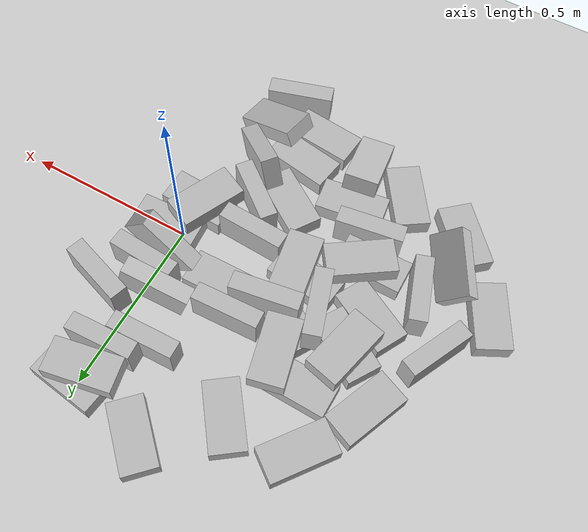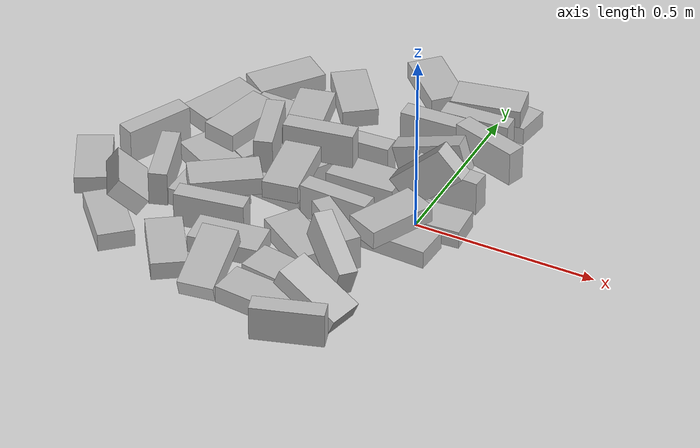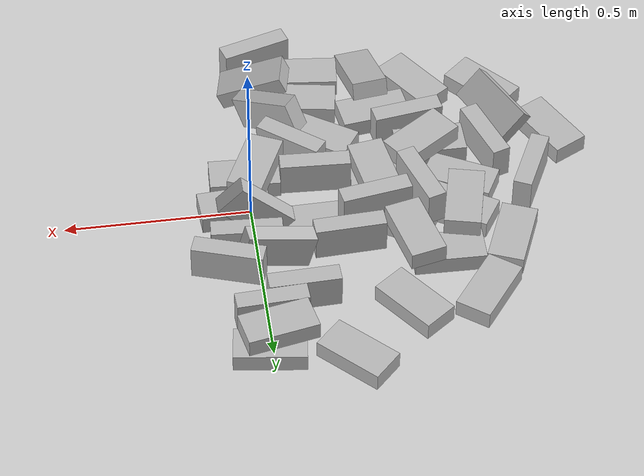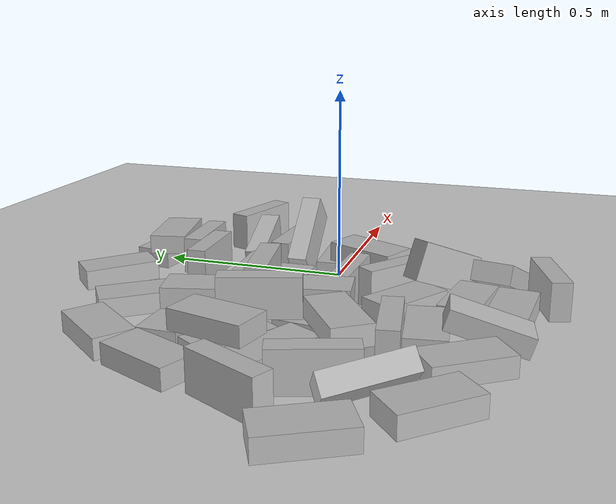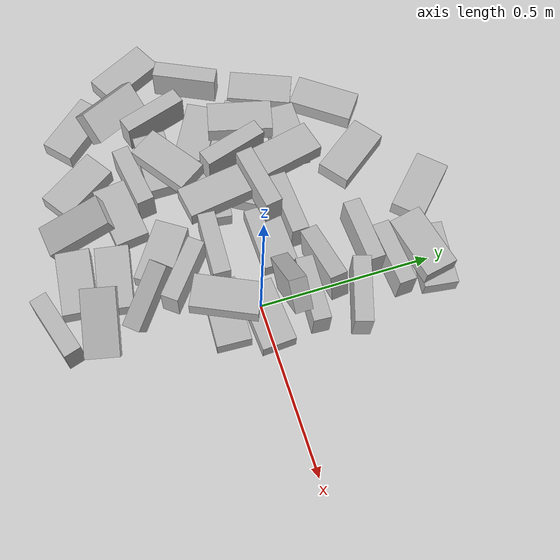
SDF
<sdf version="1.6">
 <world name="default">
  <model name="ground_plane">
   <static>1</static>
   <link name="link">
    <collision name="collision">
     <geometry><plane><normal>0 0 1</normal><size>100 100</size></plane></geometry>
     <surface>
      <contact><collide_bitmask>65535</collide_bitmask></contact>
      <friction><ode><mu>100</mu><mu2>50</mu2></ode></friction>
     </surface>
    </collision>
    <visual name="visual">
     <cast_shadows>0</cast_shadows>
     <geometry><plane><normal>0 0 1</normal><size>100 100</size></plane></geometry>
     <material>
      <script><uri>file://media/materials/scripts/gazebo.material</uri><name>Gazebo/Grey</name></script>
     </material>
    </visual>
   </link>
  </model>
  <model name="dbrick_clone">
   <static>0</static>
   <self_collide>1</self_collide>
   <link name="link">
    <inertial>
     <mass>2</mass>
     <inertia>
      <ixx>0.0198483</ixx>
      <ixy>0</ixy>
      <ixz>0</ixz>
      <iyy>0.0643333</iyy>
      <iyz>0</iyz>
      <izz>0.0758483</izz>
     </inertia>
    </inertial>
    <collision name="dbrickC"><geometry><box><size>0.19 0.05 0.097</size></box></geometry></collision>
    <visual name="dbrickV">
     <cast_shadows>0</cast_shadows>
     <geometry><box><size>0.19 0.05 0.097</size></box></geometry>
     <material>
      <script>
       <uri>model://dbrick/materials/scripts</uri>
       <uri>model://dbrick/materials/textures</uri>
       <name>vrc/dbrick</name>
      </script>
     </material>
    </visual>
    <self_collide>1</self_collide>
   </link>
   <pose>-0.133609 -0.183068 0.0485 1.1e-05 -0 -0.672185</pose>
  </model>
  <model name="dbrick_clone_0">
   <static>0</static>
   <self_collide>1</self_collide>
   <link name="link">
    <inertial>
     <mass>2</mass>
     <inertia>
      <ixx>0.0198483</ixx>
      <ixy>0</ixy>
      <ixz>0</ixz>
      <iyy>0.0643333</iyy>
      <iyz>0</iyz>
      <izz>0.0758483</izz>
     </inertia>
    </inertial>
    <collision name="dbrickC"><geometry><box><size>0.19 0.05 0.097</size></box></geometry></collision>
    <visual name="dbrickV">
     <cast_shadows>0</cast_shadows>
     <geometry><box><size>0.19 0.05 0.097</size></box></geometry>
     <material>
      <script>
       <uri>model://dbrick/materials/scripts</uri>
       <uri>model://dbrick/materials/textures</uri>
       <name>vrc/dbrick</name>
      </script>
     </material>
    </visual>
    <self_collide>1</self_collide>
   </link>
   <pose>-0.087778 -0.29454 0.081286 -0.049423 0.378819 -0.722818</pose>
  </model>
  <model name="dbrick_clone_1">
   <static>0</static>
   <self_collide>1</self_collide>
   <link name="link">
    <inertial>
     <mass>2</mass>
     <inertia>
      <ixx>0.0198483</ixx>
      <ixy>0</ixy>
      <ixz>0</ixz>
      <iyy>0.0643333</iyy>
      <iyz>0</iyz>
      <izz>0.0758483</izz>
     </inertia>
    </inertial>
    <collision name="dbrickC"><geometry><box><size>0.19 0.05 0.097</size></box></geometry></collision>
    <visual name="dbrickV">
     <cast_shadows>0</cast_shadows>
     <geometry><box><size>0.19 0.05 0.097</size></box></geometry>
     <material>
      <script>
       <uri>model://dbrick/materials/scripts</uri>
       <uri>model://dbrick/materials/textures</uri>
       <name>vrc/dbrick</name>
      </script>
     </material>
    </visual>
    <self_collide>1</self_collide>
   </link>
   <pose>-0.046764 0.197802 0.072143 -0.000118 -0.27085 0.119844</pose>
  </model>
  <model name="dbrick_clone_3">
   <static>0</static>
   <self_collide>1</self_collide>
   <link name="link">
    <inertial>
     <mass>2</mass>
     <inertia>
      <ixx>0.0198483</ixx>
      <ixy>0</ixy>
      <ixz>0</ixz>
      <iyy>0.0643333</iyy>
      <iyz>0</iyz>
      <izz>0.0758483</izz>
     </inertia>
    </inertial>
    <collision name="dbrickC"><geometry><box><size>0.19 0.05 0.097</size></box></geometry></collision>
    <visual name="dbrickV">
     <cast_shadows>0</cast_shadows>
     <geometry><box><size>0.19 0.05 0.097</size></box></geometry>
     <material>
      <script>
       <uri>model://dbrick/materials/scripts</uri>
       <uri>model://dbrick/materials/textures</uri>
       <name>vrc/dbrick</name>
      </script>
     </material>
    </visual>
    <self_collide>1</self_collide>
   </link>
   <pose>-0.076343 -0.552308 0.048479 1e-06 -2.3e-05 0.301755</pose>
  </model>
  <model name="dbrick_clone_4">
   <static>0</static>
   <self_collide>1</self_collide>
   <link name="link">
    <inertial>
     <mass>2</mass>
     <inertia>
      <ixx>0.0198483</ixx>
      <ixy>0</ixy>
      <ixz>0</ixz>
      <iyy>0.0643333</iyy>
      <iyz>0</iyz>
      <izz>0.0758483</izz>
     </inertia>
    </inertial>
    <collision name="dbrickC"><geometry><box><size>0.19 0.05 0.097</size></box></geometry></collision>
    <visual name="dbrickV">
     <cast_shadows>0</cast_shadows>
     <geometry><box><size>0.19 0.05 0.097</size></box></geometry>
     <material>
      <script>
       <uri>model://dbrick/materials/scripts</uri>
       <uri>model://dbrick/materials/textures</uri>
       <name>vrc/dbrick</name>
      </script>
     </material>
    </visual>
    <self_collide>1</self_collide>
   </link>
   <pose>-0.658381 -0.134313 0.048502 -6.1e-05 -0 -1.24975</pose>
  </model>
  <model name="dbrick_clone_6">
   <static>0</static>
   <self_collide>1</self_collide>
   <link name="link">
    <inertial>
     <mass>2</mass>
     <inertia>
      <ixx>0.0198483</ixx>
      <ixy>0</ixy>
      <ixz>0</ixz>
      <iyy>0.0643333</iyy>
      <iyz>0</iyz>
      <izz>0.0758483</izz>
     </inertia>
    </inertial>
    <collision name="dbrickC"><geometry><box><size>0.19 0.05 0.097</size></box></geometry></collision>
    <visual name="dbrickV">
     <cast_shadows>0</cast_shadows>
     <geometry><box><size>0.19 0.05 0.097</size></box></geometry>
     <material>
      <script>
       <uri>model://dbrick/materials/scripts</uri>
       <uri>model://dbrick/materials/textures</uri>
       <name>vrc/dbrick</name>
      </script>
     </material>
    </visual>
    <self_collide>1</self_collide>
   </link>
   <pose>-0.244631 0.159161 0.048498 -0 2.1e-05 0.049077</pose>
  </model>
  <model name="dbrick_clone_7">
   <static>0</static>
   <self_collide>1</self_collide>
   <link name="link">
    <inertial>
     <mass>2</mass>
     <inertia>
      <ixx>0.0198483</ixx>
      <ixy>0</ixy>
      <ixz>0</ixz>
      <iyy>0.0643333</iyy>
      <iyz>0</iyz>
      <izz>0.0758483</izz>
     </inertia>
    </inertial>
    <collision name="dbrickC"><geometry><box><size>0.19 0.05 0.097</size></box></geometry></collision>
    <visual name="dbrickV">
     <cast_shadows>0</cast_shadows>
     <geometry><box><size>0.19 0.05 0.097</size></box></geometry>
     <material>
      <script>
       <uri>model://dbrick/materials/scripts</uri>
       <uri>model://dbrick/materials/textures</uri>
       <name>vrc/dbrick</name>
      </script>
     </material>
    </visual>
    <self_collide>1</self_collide>
   </link>
   <pose>-0.460959 -0.241476 0.0485 0 -0 0.154159</pose>
  </model>
  <model name="dbrick_clone_8">
   <static>0</static>
   <self_collide>1</self_collide>
   <link name="link">
    <inertial>
     <mass>2</mass>
     <inertia>
      <ixx>0.0198483</ixx>
      <ixy>0</ixy>
      <ixz>0</ixz>
      <iyy>0.0643333</iyy>
      <iyz>0</iyz>
      <izz>0.0758483</izz>
     </inertia>
    </inertial>
    <collision name="dbrickC"><geometry><box><size>0.19 0.05 0.097</size></box></geometry></collision>
    <visual name="dbrickV">
     <cast_shadows>0</cast_shadows>
     <geometry><box><size>0.19 0.05 0.097</size></box></geometry>
     <material>
      <script>
       <uri>model://dbrick/materials/scripts</uri>
       <uri>model://dbrick/materials/textures</uri>
       <name>vrc/dbrick</name>
      </script>
     </material>
    </visual>
    <self_collide>1</self_collide>
   </link>
   <pose>-0.383635 0.096606 0.024997 -1.57074 2e-06 -0.535232</pose>
  </model>
  <model name="dbrick_clone_10">
   <static>0</static>
   <self_collide>1</self_collide>
   <link name="link">
    <inertial>
     <mass>2</mass>
     <inertia>
      <ixx>0.0198483</ixx>
      <ixy>0</ixy>
      <ixz>0</ixz>
      <iyy>0.0643333</iyy>
      <iyz>0</iyz>
      <izz>0.0758483</izz>
     </inertia>
    </inertial>
    <collision name="dbrickC"><geometry><box><size>0.19 0.05 0.097</size></box></geometry></collision>
    <visual name="dbrickV">
     <cast_shadows>0</cast_shadows>
     <geometry><box><size>0.19 0.05 0.097</size></box></geometry>
     <material>
      <script>
       <uri>model://dbrick/materials/scripts</uri>
       <uri>model://dbrick/materials/textures</uri>
       <name>vrc/dbrick</name>
      </script>
     </material>
    </visual>
    <self_collide>1</self_collide>
   </link>
   <pose>0.004749 -0.102029 0.024998 -1.57084 -3e-06 -0.044556</pose>
  </model>
  <model name="dbrick_clone_12">
   <static>0</static>
   <self_collide>1</self_collide>
   <link name="link">
    <inertial>
     <mass>2</mass>
     <inertia>
      <ixx>0.0198483</ixx>
      <ixy>0</ixy>
      <ixz>0</ixz>
      <iyy>0.0643333</iyy>
      <iyz>0</iyz>
      <izz>0.0758483</izz>
     </inertia>
    </inertial>
    <collision name="dbrickC"><geometry><box><size>0.19 0.05 0.097</size></box></geometry></collision>
    <visual name="dbrickV">
     <cast_shadows>0</cast_shadows>
     <geometry><box><size>0.19 0.05 0.097</size></box></geometry>
     <material>
      <script>
       <uri>model://dbrick/materials/scripts</uri>
       <uri>model://dbrick/materials/textures</uri>
       <name>vrc/dbrick</name>
      </script>
     </material>
    </visual>
    <self_collide>1</self_collide>
   </link>
   <pose>0.026004 0.139546 0.048479 -2.2e-05 -2.1e-05 -0.058536</pose>
  </model>
  <model name="dbrick_clone_13">
   <static>0</static>
   <self_collide>1</self_collide>
   <link name="link">
    <inertial>
     <mass>2</mass>
     <inertia>
      <ixx>0.0198483</ixx>
      <ixy>0</ixy>
      <ixz>0</ixz>
      <iyy>0.0643333</iyy>
      <iyz>0</iyz>
      <izz>0.0758483</izz>
     </inertia>
    </inertial>
    <collision name="dbrickC"><geometry><box><size>0.19 0.05 0.097</size></box></geometry></collision>
    <visual name="dbrickV">
     <cast_shadows>0</cast_shadows>
     <geometry><box><size>0.19 0.05 0.097</size></box></geometry>
     <material>
      <script>
       <uri>model://dbrick/materials/scripts</uri>
       <uri>model://dbrick/materials/textures</uri>
       <name>vrc/dbrick</name>
      </script>
     </material>
    </visual>
    <self_collide>1</self_collide>
   </link>
   <pose>-0.185448 -0.370894 0.025 -1.5708 -0 -0.163132</pose>
  </model>
  <model name="dbrick_clone_14">
   <static>0</static>
   <self_collide>1</self_collide>
   <link name="link">
    <inertial>
     <mass>2</mass>
     <inertia>
      <ixx>0.0198483</ixx>
      <ixy>0</ixy>
      <ixz>0</ixz>
      <iyy>0.0643333</iyy>
      <iyz>0</iyz>
      <izz>0.0758483</izz>
     </inertia>
    </inertial>
    <collision name="dbrickC"><geometry><box><size>0.19 0.05 0.097</size></box></geometry></collision>
    <visual name="dbrickV">
     <cast_shadows>0</cast_shadows>
     <geometry><box><size>0.19 0.05 0.097</size></box></geometry>
     <material>
      <script>
       <uri>model://dbrick/materials/scripts</uri>
       <uri>model://dbrick/materials/textures</uri>
       <name>vrc/dbrick</name>
      </script>
     </material>
    </visual>
    <self_collide>1</self_collide>
   </link>
   <pose>-0.024426 -0.092165 0.075 -1.57076 4.6e-05 -2.00529</pose>
  </model>
  <model name="dbrick_0">
   <static>0</static>
   <self_collide>1</self_collide>
   <link name="link">
    <inertial>
     <mass>2</mass>
     <inertia>
      <ixx>0.0198483</ixx>
      <ixy>0</ixy>
      <ixz>0</ixz>
      <iyy>0.0643333</iyy>
      <iyz>0</iyz>
      <izz>0.0758483</izz>
     </inertia>
    </inertial>
    <collision name="dbrickC"><geometry><box><size>0.19 0.05 0.097</size></box></geometry></collision>
    <visual name="dbrickV">
     <cast_shadows>0</cast_shadows>
     <geometry><box><size>0.19 0.05 0.097</size></box></geometry>
     <material>
      <script>
       <uri>model://dbrick/materials/scripts</uri>
       <uri>model://dbrick/materials/textures</uri>
       <name>vrc/dbrick</name>
      </script>
     </material>
    </visual>
    <self_collide>1</self_collide>
   </link>
   <pose>-0.003689 0.086742 0.100943 3.14132 0.769792 -3.13146</pose>
  </model>
  <model name="dbrick_1">
   <static>0</static>
   <self_collide>1</self_collide>
   <link name="link">
    <inertial>
     <mass>2</mass>
     <inertia>
      <ixx>0.0198483</ixx>
      <ixy>0</ixy>
      <ixz>0</ixz>
      <iyy>0.0643333</iyy>
      <iyz>0</iyz>
      <izz>0.0758483</izz>
     </inertia>
    </inertial>
    <collision name="dbrickC"><geometry><box><size>0.19 0.05 0.097</size></box></geometry></collision>
    <visual name="dbrickV">
     <cast_shadows>0</cast_shadows>
     <geometry><box><size>0.19 0.05 0.097</size></box></geometry>
     <material>
      <script>
       <uri>model://dbrick/materials/scripts</uri>
       <uri>model://dbrick/materials/textures</uri>
       <name>vrc/dbrick</name>
      </script>
     </material>
    </visual>
    <self_collide>1</self_collide>
   </link>
   <pose>-0.184451 -0.079483 0.048481 1.1e-05 -0 -0.043888</pose>
  </model>
  <model name="dbrick_clone_10_clone_0">
   <static>0</static>
   <self_collide>1</self_collide>
   <link name="link">
    <inertial>
     <mass>2</mass>
     <inertia>
      <ixx>0.0198483</ixx>
      <ixy>0</ixy>
      <ixz>0</ixz>
      <iyy>0.0643333</iyy>
      <iyz>0</iyz>
      <izz>0.0758483</izz>
     </inertia>
    </inertial>
    <collision name="dbrickC"><geometry><box><size>0.19 0.05 0.097</size></box></geometry></collision>
    <visual name="dbrickV">
     <cast_shadows>0</cast_shadows>
     <geometry><box><size>0.19 0.05 0.097</size></box></geometry>
     <material>
      <script>
       <uri>model://dbrick/materials/scripts</uri>
       <uri>model://dbrick/materials/textures</uri>
       <name>vrc/dbrick</name>
      </script>
     </material>
    </visual>
    <self_collide>1</self_collide>
   </link>
   <pose>-0.372297 -0.036682 0.025 -1.5708 3e-06 -0.125776</pose>
  </model>
  <model name="dbrick_clone_10_clone_1">
   <static>0</static>
   <self_collide>1</self_collide>
   <link name="link">
    <inertial>
     <mass>2</mass>
     <inertia>
      <ixx>0.0198483</ixx>
      <ixy>0</ixy>
      <ixz>0</ixz>
      <iyy>0.0643333</iyy>
      <iyz>0</iyz>
      <izz>0.0758483</izz>
     </inertia>
    </inertial>
    <collision name="dbrickC"><geometry><box><size>0.19 0.05 0.097</size></box></geometry></collision>
    <visual name="dbrickV">
     <cast_shadows>0</cast_shadows>
     <geometry><box><size>0.19 0.05 0.097</size></box></geometry>
     <material>
      <script>
       <uri>model://dbrick/materials/scripts</uri>
       <uri>model://dbrick/materials/textures</uri>
       <name>vrc/dbrick</name>
      </script>
     </material>
    </visual>
    <self_collide>1</self_collide>
   </link>
   <pose>-0.181742 0.085627 0.024822 -1.57076 -0 0.018671</pose>
  </model>
  <model name="dbrick_clone_10_clone_5">
   <static>0</static>
   <self_collide>1</self_collide>
   <link name="link">
    <inertial>
     <mass>2</mass>
     <inertia>
      <ixx>0.0198483</ixx>
      <ixy>0</ixy>
      <ixz>0</ixz>
      <iyy>0.0643333</iyy>
      <iyz>0</iyz>
      <izz>0.0758483</izz>
     </inertia>
    </inertial>
    <collision name="dbrickC"><geometry><box><size>0.19 0.05 0.097</size></box></geometry></collision>
    <visual name="dbrickV">
     <cast_shadows>0</cast_shadows>
     <geometry><box><size>0.19 0.05 0.097</size></box></geometry>
     <material>
      <script>
       <uri>model://dbrick/materials/scripts</uri>
       <uri>model://dbrick/materials/textures</uri>
       <name>vrc/dbrick</name>
      </script>
     </material>
    </visual>
    <self_collide>1</self_collide>
   </link>
   <pose>-0.512018 -0.161329 0.024994 -1.57081 3.2e-05 0.005484</pose>
  </model>
  <model name="dbrick_clone_10_clone_6_clone_2">
   <static>0</static>
   <self_collide>1</self_collide>
   <link name="link">
    <inertial>
     <mass>2</mass>
     <inertia>
      <ixx>0.0198483</ixx>
      <ixy>0</ixy>
      <ixz>0</ixz>
      <iyy>0.0643333</iyy>
      <iyz>0</iyz>
      <izz>0.0758483</izz>
     </inertia>
    </inertial>
    <collision name="dbrickC"><geometry><box><size>0.19 0.05 0.097</size></box></geometry></collision>
    <visual name="dbrickV">
     <cast_shadows>0</cast_shadows>
     <geometry><box><size>0.19 0.05 0.097</size></box></geometry>
     <material>
      <script>
       <uri>model://dbrick/materials/scripts</uri>
       <uri>model://dbrick/materials/textures</uri>
       <name>vrc/dbrick</name>
      </script>
     </material>
    </visual>
    <self_collide>1</self_collide>
   </link>
   <pose>-0.340802 -0.031051 0.074988 -1.57075 7.7e-05 -1.41024</pose>
  </model>
  <model name="dbrick_clone_10_clone_6_clone_3">
   <static>0</static>
   <self_collide>1</self_collide>
   <link name="link">
    <inertial>
     <mass>2</mass>
     <inertia>
      <ixx>0.0198483</ixx>
      <ixy>0</ixy>
      <ixz>0</ixz>
      <iyy>0.0643333</iyy>
      <iyz>0</iyz>
      <izz>0.0758483</izz>
     </inertia>
    </inertial>
    <collision name="dbrickC"><geometry><box><size>0.19 0.05 0.097</size></box></geometry></collision>
    <visual name="dbrickV">
     <cast_shadows>0</cast_shadows>
     <geometry><box><size>0.19 0.05 0.097</size></box></geometry>
     <material>
      <script>
       <uri>model://dbrick/materials/scripts</uri>
       <uri>model://dbrick/materials/textures</uri>
       <name>vrc/dbrick</name>
      </script>
     </material>
    </visual>
    <self_collide>1</self_collide>
   </link>
   <pose>-0.377452 -0.304613 0.025001 -1.57081 -0 0.136091</pose>
  </model>
  <model name="dbrick_clone_10_clone_6_clone_4">
   <static>0</static>
   <self_collide>1</self_collide>
   <link name="link">
    <inertial>
     <mass>2</mass>
     <inertia>
      <ixx>0.0198483</ixx>
      <ixy>0</ixy>
      <ixz>0</ixz>
      <iyy>0.0643333</iyy>
      <iyz>0</iyz>
      <izz>0.0758483</izz>
     </inertia>
    </inertial>
    <collision name="dbrickC"><geometry><box><size>0.19 0.05 0.097</size></box></geometry></collision>
    <visual name="dbrickV">
     <cast_shadows>0</cast_shadows>
     <geometry><box><size>0.19 0.05 0.097</size></box></geometry>
     <material>
      <script>
       <uri>model://dbrick/materials/scripts</uri>
       <uri>model://dbrick/materials/textures</uri>
       <name>vrc/dbrick</name>
      </script>
     </material>
    </visual>
    <self_collide>1</self_collide>
   </link>
   <pose>-0.059828 -0.436128 0.06038 -1.57069 0.404573 -0.21265</pose>
  </model>
  <model name="dbrick_clone_10_clone_6_clone_1_clone_6">
   <static>0</static>
   <self_collide>1</self_collide>
   <link name="link">
    <inertial>
     <mass>2</mass>
     <inertia>
      <ixx>0.0198483</ixx>
      <ixy>0</ixy>
      <ixz>0</ixz>
      <iyy>0.0643333</iyy>
      <iyz>0</iyz>
      <izz>0.0758483</izz>
     </inertia>
    </inertial>
    <collision name="dbrickC"><geometry><box><size>0.19 0.05 0.097</size></box></geometry></collision>
    <visual name="dbrickV">
     <cast_shadows>0</cast_shadows>
     <geometry><box><size>0.19 0.05 0.097</size></box></geometry>
     <material>
      <script>
       <uri>model://dbrick/materials/scripts</uri>
       <uri>model://dbrick/materials/textures</uri>
       <name>vrc/dbrick</name>
      </script>
     </material>
    </visual>
    <self_collide>1</self_collide>
   </link>
   <pose>-0.321636 0.094184 0.098508 0.000201 0.000142 0.166547</pose>
  </model>
  <model name="dbrick_clone_10_clone_6_clone_1_clone_8">
   <static>0</static>
   <self_collide>1</self_collide>
   <link name="link">
    <inertial>
     <mass>2</mass>
     <inertia>
      <ixx>0.0198483</ixx>
      <ixy>0</ixy>
      <ixz>0</ixz>
      <iyy>0.0643333</iyy>
      <iyz>0</iyz>
      <izz>0.0758483</izz>
     </inertia>
    </inertial>
    <collision name="dbrickC"><geometry><box><size>0.19 0.05 0.097</size></box></geometry></collision>
    <visual name="dbrickV">
     <cast_shadows>0</cast_shadows>
     <geometry><box><size>0.19 0.05 0.097</size></box></geometry>
     <material>
      <script>
       <uri>model://dbrick/materials/scripts</uri>
       <uri>model://dbrick/materials/textures</uri>
       <name>vrc/dbrick</name>
      </script>
     </material>
    </visual>
    <self_collide>1</self_collide>
   </link>
   <pose>-0.481375 -0.133363 0.074993 1.57079 2.8e-05 0.603379</pose>
  </model>
  <model name="dbrick_clone_10_clone_6_clone_2_clone">
   <static>0</static>
   <self_collide>1</self_collide>
   <link name="link">
    <inertial>
     <mass>2</mass>
     <inertia>
      <ixx>0.0198483</ixx>
      <ixy>0</ixy>
      <ixz>0</ixz>
      <iyy>0.0643333</iyy>
      <iyz>0</iyz>
      <izz>0.0758483</izz>
     </inertia>
    </inertial>
    <collision name="dbrickC"><geometry><box><size>0.19 0.05 0.097</size></box></geometry></collision>
    <visual name="dbrickV">
     <cast_shadows>0</cast_shadows>
     <geometry><box><size>0.19 0.05 0.097</size></box></geometry>
     <material>
      <script>
       <uri>model://dbrick/materials/scripts</uri>
       <uri>model://dbrick/materials/textures</uri>
       <name>vrc/dbrick</name>
      </script>
     </material>
    </visual>
    <self_collide>1</self_collide>
   </link>
   <pose>-0.411709 0.202506 0.074992 -1.57081 -2e-06 -1.34083</pose>
  </model>
  <model name="dbrick_clone_10_clone_6_clone_2_clone_1">
   <static>0</static>
   <self_collide>1</self_collide>
   <link name="link">
    <inertial>
     <mass>2</mass>
     <inertia>
      <ixx>0.0198483</ixx>
      <ixy>0</ixy>
      <ixz>0</ixz>
      <iyy>0.0643333</iyy>
      <iyz>0</iyz>
      <izz>0.0758483</izz>
     </inertia>
    </inertial>
    <collision name="dbrickC"><geometry><box><size>0.19 0.05 0.097</size></box></geometry></collision>
    <visual name="dbrickV">
     <cast_shadows>0</cast_shadows>
     <geometry><box><size>0.19 0.05 0.097</size></box></geometry>
     <material>
      <script>
       <uri>model://dbrick/materials/scripts</uri>
       <uri>model://dbrick/materials/textures</uri>
       <name>vrc/dbrick</name>
      </script>
     </material>
    </visual>
    <self_collide>1</self_collide>
   </link>
   <pose>-0.552824 0.085082 0.025 -1.57079 -0 -0.557269</pose>
  </model>
  <model name="dbrick_clone_10_clone_6_clone_2_clone_2">
   <static>0</static>
   <self_collide>1</self_collide>
   <link name="link">
    <inertial>
     <mass>2</mass>
     <inertia>
      <ixx>0.0198483</ixx>
      <ixy>0</ixy>
      <ixz>0</ixz>
      <iyy>0.0643333</iyy>
      <iyz>0</iyz>
      <izz>0.0758483</izz>
     </inertia>
    </inertial>
    <collision name="dbrickC"><geometry><box><size>0.19 0.05 0.097</size></box></geometry></collision>
    <visual name="dbrickV">
     <cast_shadows>0</cast_shadows>
     <geometry><box><size>0.19 0.05 0.097</size></box></geometry>
     <material>
      <script>
       <uri>model://dbrick/materials/scripts</uri>
       <uri>model://dbrick/materials/textures</uri>
       <name>vrc/dbrick</name>
      </script>
     </material>
    </visual>
    <self_collide>1</self_collide>
   </link>
   <pose>-0.693999 -0.364251 0.024991 -1.57078 2e-06 -0.845003</pose>
  </model>
  <model name="dbrick_clone_10_clone_6_clone_1_clone_clone_1">
   <static>0</static>
   <self_collide>1</self_collide>
   <link name="link">
    <inertial>
     <mass>2</mass>
     <inertia>
      <ixx>0.0198483</ixx>
      <ixy>0</ixy>
      <ixz>0</ixz>
      <iyy>0.0643333</iyy>
      <iyz>0</iyz>
      <izz>0.0758483</izz>
     </inertia>
    </inertial>
    <collision name="dbrickC"><geometry><box><size>0.19 0.05 0.097</size></box></geometry></collision>
    <visual name="dbrickV">
     <cast_shadows>0</cast_shadows>
     <geometry><box><size>0.19 0.05 0.097</size></box></geometry>
     <material>
      <script>
       <uri>model://dbrick/materials/scripts</uri>
       <uri>model://dbrick/materials/textures</uri>
       <name>vrc/dbrick</name>
      </script>
     </material>
    </visual>
    <self_collide>1</self_collide>
   </link>
   <pose>-0.218636 -0.225336 0.025 1.5708 -0 -0.589781</pose>
  </model>
  <model name="dbrick_clone_14_clone_10">
   <static>0</static>
   <self_collide>1</self_collide>
   <link name="link">
    <inertial>
     <mass>2</mass>
     <inertia>
      <ixx>0.0198483</ixx>
      <ixy>0</ixy>
      <ixz>0</ixz>
      <iyy>0.0643333</iyy>
      <iyz>0</iyz>
      <izz>0.0758483</izz>
     </inertia>
    </inertial>
    <collision name="dbrickC"><geometry><box><size>0.19 0.05 0.097</size></box></geometry></collision>
    <visual name="dbrickV">
     <cast_shadows>0</cast_shadows>
     <geometry><box><size>0.19 0.05 0.097</size></box></geometry>
     <material>
      <script>
       <uri>model://dbrick/materials/scripts</uri>
       <uri>model://dbrick/materials/textures</uri>
       <name>vrc/dbrick</name>
      </script>
     </material>
    </visual>
    <self_collide>1</self_collide>
   </link>
   <pose>-0.450223 0.053958 0.0985 -6e-06 -6e-06 -1.26253</pose>
  </model>
  <model name="dbrick_clone_14_clone_11">
   <static>0</static>
   <self_collide>1</self_collide>
   <link name="link">
    <inertial>
     <mass>2</mass>
     <inertia>
      <ixx>0.0198483</ixx>
      <ixy>0</ixy>
      <ixz>0</ixz>
      <iyy>0.0643333</iyy>
      <iyz>0</iyz>
      <izz>0.0758483</izz>
     </inertia>
    </inertial>
    <collision name="dbrickC"><geometry><box><size>0.19 0.05 0.097</size></box></geometry></collision>
    <visual name="dbrickV">
     <cast_shadows>0</cast_shadows>
     <geometry><box><size>0.19 0.05 0.097</size></box></geometry>
     <material>
      <script>
       <uri>model://dbrick/materials/scripts</uri>
       <uri>model://dbrick/materials/textures</uri>
       <name>vrc/dbrick</name>
      </script>
     </material>
    </visual>
    <self_collide>1</self_collide>
   </link>
   <pose>-0.761473 -0.002589 0.0485 0 -0 -2.01795</pose>
  </model>
  <model name="dbrick_clone_10_clone_6_clone_2_clone_2_clone_0">
   <static>0</static>
   <self_collide>1</self_collide>
   <link name="link">
    <inertial>
     <mass>2</mass>
     <inertia>
      <ixx>0.0198483</ixx>
      <ixy>0</ixy>
      <ixz>0</ixz>
      <iyy>0.0643333</iyy>
      <iyz>0</iyz>
      <izz>0.0758483</izz>
     </inertia>
    </inertial>
    <collision name="dbrickC"><geometry><box><size>0.19 0.05 0.097</size></box></geometry></collision>
    <visual name="dbrickV">
     <cast_shadows>0</cast_shadows>
     <geometry><box><size>0.19 0.05 0.097</size></box></geometry>
     <material>
      <script>
       <uri>model://dbrick/materials/scripts</uri>
       <uri>model://dbrick/materials/textures</uri>
       <name>vrc/dbrick</name>
      </script>
     </material>
    </visual>
    <self_collide>1</self_collide>
   </link>
   <pose>-0.50259 -0.403103 0.025 -1.5708 -0 -0.976965</pose>
  </model>
  <model name="dbrick_clone_13_clone">
   <static>0</static>
   <self_collide>1</self_collide>
   <link name="link">
    <inertial>
     <mass>2</mass>
     <inertia>
      <ixx>0.0198483</ixx>
      <ixy>0</ixy>
      <ixz>0</ixz>
      <iyy>0.0643333</iyy>
      <iyz>0</iyz>
      <izz>0.0758483</izz>
     </inertia>
    </inertial>
    <collision name="dbrickC"><geometry><box><size>0.19 0.05 0.097</size></box></geometry></collision>
    <visual name="dbrickV">
     <cast_shadows>0</cast_shadows>
     <geometry><box><size>0.19 0.05 0.097</size></box></geometry>
     <material>
      <script>
       <uri>model://dbrick/materials/scripts</uri>
       <uri>model://dbrick/materials/textures</uri>
       <name>vrc/dbrick</name>
      </script>
     </material>
    </visual>
    <self_collide>1</self_collide>
   </link>
   <pose>-0.37851 0.400044 0.025 -1.5708 -0 -0.928445</pose>
  </model>
  <model name="dbrick_clone_13_clone_0">
   <static>0</static>
   <self_collide>1</self_collide>
   <link name="link">
    <inertial>
     <mass>2</mass>
     <inertia>
      <ixx>0.0198483</ixx>
      <ixy>0</ixy>
      <ixz>0</ixz>
      <iyy>0.0643333</iyy>
      <iyz>0</iyz>
      <izz>0.0758483</izz>
     </inertia>
    </inertial>
    <collision name="dbrickC"><geometry><box><size>0.19 0.05 0.097</size></box></geometry></collision>
    <visual name="dbrickV">
     <cast_shadows>0</cast_shadows>
     <geometry><box><size>0.19 0.05 0.097</size></box></geometry>
     <material>
      <script>
       <uri>model://dbrick/materials/scripts</uri>
       <uri>model://dbrick/materials/textures</uri>
       <name>vrc/dbrick</name>
      </script>
     </material>
    </visual>
    <self_collide>1</self_collide>
   </link>
   <pose>-0.496511 0.236222 0.024996 -1.57082 3.5e-05 -0.016629</pose>
  </model>
  <model name="dbrick_clone_13_clone_4">
   <static>0</static>
   <self_collide>1</self_collide>
   <link name="link">
    <inertial>
     <mass>2</mass>
     <inertia>
      <ixx>0.0198483</ixx>
      <ixy>0</ixy>
      <ixz>0</ixz>
      <iyy>0.0643333</iyy>
      <iyz>0</iyz>
      <izz>0.0758483</izz>
     </inertia>
    </inertial>
    <collision name="dbrickC"><geometry><box><size>0.19 0.05 0.097</size></box></geometry></collision>
    <visual name="dbrickV">
     <cast_shadows>0</cast_shadows>
     <geometry><box><size>0.19 0.05 0.097</size></box></geometry>
     <material>
      <script>
       <uri>model://dbrick/materials/scripts</uri>
       <uri>model://dbrick/materials/textures</uri>
       <name>vrc/dbrick</name>
      </script>
     </material>
    </visual>
    <self_collide>1</self_collide>
   </link>
   <pose>-0.203233 -0.474661 0.024703 -1.57082 5.9e-05 -0.099794</pose>
  </model>
  <model name="dbrick_clone_13_clone_6">
   <static>0</static>
   <self_collide>1</self_collide>
   <link name="link">
    <inertial>
     <mass>2</mass>
     <inertia>
      <ixx>0.0198483</ixx>
      <ixy>0</ixy>
      <ixz>0</ixz>
      <iyy>0.0643333</iyy>
      <iyz>0</iyz>
      <izz>0.0758483</izz>
     </inertia>
    </inertial>
    <collision name="dbrickC"><geometry><box><size>0.19 0.05 0.097</size></box></geometry></collision>
    <visual name="dbrickV">
     <cast_shadows>0</cast_shadows>
     <geometry><box><size>0.19 0.05 0.097</size></box></geometry>
     <material>
      <script>
       <uri>model://dbrick/materials/scripts</uri>
       <uri>model://dbrick/materials/textures</uri>
       <name>vrc/dbrick</name>
      </script>
     </material>
    </visual>
    <self_collide>1</self_collide>
   </link>
   <pose>0.010456 0.505064 0.025 -1.57081 4e-06 -0.127307</pose>
  </model>
  <model name="dbrick_clone_13_clone_7">
   <static>0</static>
   <self_collide>1</self_collide>
   <link name="link">
    <inertial>
     <mass>2</mass>
     <inertia>
      <ixx>0.0198483</ixx>
      <ixy>0</ixy>
      <ixz>0</ixz>
      <iyy>0.0643333</iyy>
      <iyz>0</iyz>
      <izz>0.0758483</izz>
     </inertia>
    </inertial>
    <collision name="dbrickC"><geometry><box><size>0.19 0.05 0.097</size></box></geometry></collision>
    <visual name="dbrickV">
     <cast_shadows>0</cast_shadows>
     <geometry><box><size>0.19 0.05 0.097</size></box></geometry>
     <material>
      <script>
       <uri>model://dbrick/materials/scripts</uri>
       <uri>model://dbrick/materials/textures</uri>
       <name>vrc/dbrick</name>
      </script>
     </material>
    </visual>
    <self_collide>1</self_collide>
   </link>
   <pose>-0.010205 0.388629 0.04844 7.3e-05 2.9e-05 0.05428</pose>
  </model>
  <model name="dbrick_clone_13_clone_9_clone">
   <static>0</static>
   <self_collide>1</self_collide>
   <link name="link">
    <inertial>
     <mass>2</mass>
     <inertia>
      <ixx>0.0198483</ixx>
      <ixy>0</ixy>
      <ixz>0</ixz>
      <iyy>0.0643333</iyy>
      <iyz>0</iyz>
      <izz>0.0758483</izz>
     </inertia>
    </inertial>
    <collision name="dbrickC"><geometry><box><size>0.19 0.05 0.097</size></box></geometry></collision>
    <visual name="dbrickV">
     <cast_shadows>0</cast_shadows>
     <geometry><box><size>0.19 0.05 0.097</size></box></geometry>
     <material>
      <script>
       <uri>model://dbrick/materials/scripts</uri>
       <uri>model://dbrick/materials/textures</uri>
       <name>vrc/dbrick</name>
      </script>
     </material>
    </visual>
    <self_collide>1</self_collide>
   </link>
   <pose>-0.577223 0.385115 0.025 -1.5708 -0 0.92662</pose>
  </model>
  <model name="dbrick_clone_13_clone_9_clone_0">
   <static>0</static>
   <self_collide>1</self_collide>
   <link name="link">
    <inertial>
     <mass>2</mass>
     <inertia>
      <ixx>0.0198483</ixx>
      <ixy>0</ixy>
      <ixz>0</ixz>
      <iyy>0.0643333</iyy>
      <iyz>0</iyz>
      <izz>0.0758483</izz>
     </inertia>
    </inertial>
    <collision name="dbrickC"><geometry><box><size>0.19 0.05 0.097</size></box></geometry></collision>
    <visual name="dbrickV">
     <cast_shadows>0</cast_shadows>
     <geometry><box><size>0.19 0.05 0.097</size></box></geometry>
     <material>
      <script>
       <uri>model://dbrick/materials/scripts</uri>
       <uri>model://dbrick/materials/textures</uri>
       <name>vrc/dbrick</name>
      </script>
     </material>
    </visual>
    <self_collide>1</self_collide>
   </link>
   <pose>-0.672886 0.20912 0.025 -1.5708 -0 1.18001</pose>
  </model>
  <model name="dbrick_clone_13_clone_clone">
   <static>0</static>
   <self_collide>1</self_collide>
   <link name="link">
    <inertial>
     <mass>2</mass>
     <inertia>
      <ixx>0.0198483</ixx>
      <ixy>0</ixy>
      <ixz>0</ixz>
      <iyy>0.0643333</iyy>
      <iyz>0</iyz>
      <izz>0.0758483</izz>
     </inertia>
    </inertial>
    <collision name="dbrickC"><geometry><box><size>0.19 0.05 0.097</size></box></geometry></collision>
    <visual name="dbrickV">
     <cast_shadows>0</cast_shadows>
     <geometry><box><size>0.19 0.05 0.097</size></box></geometry>
     <material>
      <script>
       <uri>model://dbrick/materials/scripts</uri>
       <uri>model://dbrick/materials/textures</uri>
       <name>vrc/dbrick</name>
      </script>
     </material>
    </visual>
    <self_collide>1</self_collide>
   </link>
   <pose>-0.10053 0.333621 0.048387 -3.14159 -2.1e-05 0.035533</pose>
  </model>
  <model name="dbrick_0_clone_1">
   <static>0</static>
   <self_collide>1</self_collide>
   <link name="link">
    <inertial>
     <mass>2</mass>
     <inertia>
      <ixx>0.0198483</ixx>
      <ixy>0</ixy>
      <ixz>0</ixz>
      <iyy>0.0643333</iyy>
      <iyz>0</iyz>
      <izz>0.0758483</izz>
     </inertia>
    </inertial>
    <collision name="dbrickC"><geometry><box><size>0.19 0.05 0.097</size></box></geometry></collision>
    <visual name="dbrickV">
     <cast_shadows>0</cast_shadows>
     <geometry><box><size>0.19 0.05 0.097</size></box></geometry>
     <material>
      <script>
       <uri>model://dbrick/materials/scripts</uri>
       <uri>model://dbrick/materials/textures</uri>
       <name>vrc/dbrick</name>
      </script>
     </material>
    </visual>
    <self_collide>1</self_collide>
   </link>
   <pose>0.085953 0.255782 0.098511 -3.14121 0.000496 2.82558</pose>
  </model>
  <model name="dbrick_0_clone_2">
   <static>0</static>
   <self_collide>1</self_collide>
   <link name="link">
    <inertial>
     <mass>2</mass>
     <inertia>
      <ixx>0.0198483</ixx>
      <ixy>0</ixy>
      <ixz>0</ixz>
      <iyy>0.0643333</iyy>
      <iyz>0</iyz>
      <izz>0.0758483</izz>
     </inertia>
    </inertial>
    <collision name="dbrickC"><geometry><box><size>0.19 0.05 0.097</size></box></geometry></collision>
    <visual name="dbrickV">
     <cast_shadows>0</cast_shadows>
     <geometry><box><size>0.19 0.05 0.097</size></box></geometry>
     <material>
      <script>
       <uri>model://dbrick/materials/scripts</uri>
       <uri>model://dbrick/materials/textures</uri>
       <name>vrc/dbrick</name>
      </script>
     </material>
    </visual>
    <self_collide>1</self_collide>
   </link>
   <pose>-0.208238 0.552925 0.025 1.5708 -0 2.36808</pose>
  </model>
  <model name="dbrick_clone_10_clone_6_clone_2_clone_0_clone_5">
   <static>0</static>
   <self_collide>1</self_collide>
   <link name="link">
    <inertial>
     <mass>2</mass>
     <inertia>
      <ixx>0.0198483</ixx>
      <ixy>0</ixy>
      <ixz>0</ixz>
      <iyy>0.0643333</iyy>
      <iyz>0</iyz>
      <izz>0.0758483</izz>
     </inertia>
    </inertial>
    <collision name="dbrickC"><geometry><box><size>0.19 0.05 0.097</size></box></geometry></collision>
    <visual name="dbrickV">
     <cast_shadows>0</cast_shadows>
     <geometry><box><size>0.19 0.05 0.097</size></box></geometry>
     <material>
      <script>
       <uri>model://dbrick/materials/scripts</uri>
       <uri>model://dbrick/materials/textures</uri>
       <name>vrc/dbrick</name>
      </script>
     </material>
    </visual>
    <self_collide>1</self_collide>
   </link>
   <pose>-0.362939 -0.435282 0.051233 1.57081 0.291336 -1.43508</pose>
  </model>
  <model name="dbrick_clone_10_clone_6_clone_2_clone_0_clone_7">
   <static>0</static>
   <self_collide>1</self_collide>
   <link name="link">
    <inertial>
     <mass>2</mass>
     <inertia>
      <ixx>0.0198483</ixx>
      <ixy>0</ixy>
      <ixz>0</ixz>
      <iyy>0.0643333</iyy>
      <iyz>0</iyz>
      <izz>0.0758483</izz>
     </inertia>
    </inertial>
    <collision name="dbrickC"><geometry><box><size>0.19 0.05 0.097</size></box></geometry></collision>
    <visual name="dbrickV">
     <cast_shadows>0</cast_shadows>
     <geometry><box><size>0.19 0.05 0.097</size></box></geometry>
     <material>
      <script>
       <uri>model://dbrick/materials/scripts</uri>
       <uri>model://dbrick/materials/textures</uri>
       <name>vrc/dbrick</name>
      </script>
     </material>
    </visual>
    <self_collide>1</self_collide>
   </link>
   <pose>-0.704273 -0.248631 0.065206 0.863748 -0.162407 -1.0319</pose>
  </model>
  <model name="dbrick_clone_10_clone_6_clone_2_clone_0_clone_9">
   <static>0</static>
   <self_collide>1</self_collide>
   <link name="link">
    <inertial>
     <mass>2</mass>
     <inertia>
      <ixx>0.0198483</ixx>
      <ixy>0</ixy>
      <ixz>0</ixz>
      <iyy>0.0643333</iyy>
      <iyz>0</iyz>
      <izz>0.0758483</izz>
     </inertia>
    </inertial>
    <collision name="dbrickC"><geometry><box><size>0.19 0.05 0.097</size></box></geometry></collision>
    <visual name="dbrickV">
     <cast_shadows>0</cast_shadows>
     <geometry><box><size>0.19 0.05 0.097</size></box></geometry>
     <material>
      <script>
       <uri>model://dbrick/materials/scripts</uri>
       <uri>model://dbrick/materials/textures</uri>
       <name>vrc/dbrick</name>
      </script>
     </material>
    </visual>
    <self_collide>1</self_collide>
   </link>
   <pose>-0.847308 -0.174693 0.024927 1.57079 5e-06 -1.08628</pose>
  </model>
  <model name="dbrick_clone_10_clone_6_clone_1_clone_clone_17">
   <static>0</static>
   <self_collide>1</self_collide>
   <link name="link">
    <inertial>
     <mass>2</mass>
     <inertia>
      <ixx>0.0198483</ixx>
      <ixy>0</ixy>
      <ixz>0</ixz>
      <iyy>0.0643333</iyy>
      <iyz>0</iyz>
      <izz>0.0758483</izz>
     </inertia>
    </inertial>
    <collision name="dbrickC"><geometry><box><size>0.19 0.05 0.097</size></box></geometry></collision>
    <visual name="dbrickV">
     <cast_shadows>0</cast_shadows>
     <geometry><box><size>0.19 0.05 0.097</size></box></geometry>
     <material>
      <script>
       <uri>model://dbrick/materials/scripts</uri>
       <uri>model://dbrick/materials/textures</uri>
       <name>vrc/dbrick</name>
      </script>
     </material>
    </visual>
    <self_collide>1</self_collide>
   </link>
   <pose>0.043506 0.003511 0.024865 1.57075 6e-06 0.064113</pose>
  </model>
  <model name="dbrick_clone_10_clone_6_clone_1_clone_clone_21">
   <static>0</static>
   <self_collide>1</self_collide>
   <link name="link">
    <inertial>
     <mass>2</mass>
     <inertia>
      <ixx>0.0198483</ixx>
      <ixy>0</ixy>
      <ixz>0</ixz>
      <iyy>0.0643333</iyy>
      <iyz>0</iyz>
      <izz>0.0758483</izz>
     </inertia>
    </inertial>
    <collision name="dbrickC"><geometry><box><size>0.19 0.05 0.097</size></box></geometry></collision>
    <visual name="dbrickV">
     <cast_shadows>0</cast_shadows>
     <geometry><box><size>0.19 0.05 0.097</size></box></geometry>
     <material>
      <script>
       <uri>model://dbrick/materials/scripts</uri>
       <uri>model://dbrick/materials/textures</uri>
       <name>vrc/dbrick</name>
      </script>
     </material>
    </visual>
    <self_collide>1</self_collide>
   </link>
   <pose>-0.015842 0.475256 0.074997 1.57079 -2.7e-05 0.20017</pose>
  </model>
  <model name="dbrick_clone_10_clone_6_clone_1_clone_clone_23">
   <static>0</static>
   <self_collide>1</self_collide>
   <link name="link">
    <inertial>
     <mass>2</mass>
     <inertia>
      <ixx>0.0198483</ixx>
      <ixy>0</ixy>
      <ixz>0</ixz>
      <iyy>0.0643333</iyy>
      <iyz>0</iyz>
      <izz>0.0758483</izz>
     </inertia>
    </inertial>
    <collision name="dbrickC"><geometry><box><size>0.19 0.05 0.097</size></box></geometry></collision>
    <visual name="dbrickV">
     <cast_shadows>0</cast_shadows>
     <geometry><box><size>0.19 0.05 0.097</size></box></geometry>
     <material>
      <script>
       <uri>model://dbrick/materials/scripts</uri>
       <uri>model://dbrick/materials/textures</uri>
       <name>vrc/dbrick</name>
      </script>
     </material>
    </visual>
    <self_collide>1</self_collide>
   </link>
   <pose>-0.573001 -0.021323 0.025 1.5708 -0 -0.489956</pose>
  </model>
  <model name="dbrick_clone_clone_clone_clone_4">
   <static>0</static>
   <self_collide>1</self_collide>
   <link name="link">
    <inertial>
     <mass>2</mass>
     <inertia>
      <ixx>0.0198483</ixx>
      <ixy>0</ixy>
      <ixz>0</ixz>
      <iyy>0.0643333</iyy>
      <iyz>0</iyz>
      <izz>0.0758483</izz>
     </inertia>
    </inertial>
    <collision name="dbrickC"><geometry><box><size>0.19 0.05 0.097</size></box></geometry></collision>
    <visual name="dbrickV">
     <cast_shadows>0</cast_shadows>
     <geometry><box><size>0.19 0.05 0.097</size></box></geometry>
     <material>
      <script>
       <uri>model://dbrick/materials/scripts</uri>
       <uri>model://dbrick/materials/textures</uri>
       <name>vrc/dbrick</name>
      </script>
     </material>
    </visual>
    <self_collide>1</self_collide>
   </link>
   <pose>-0.559237 0.110074 0.075 -1.57082 -2e-05 -1.80725</pose>
  </model>
 </world>
</sdf>
